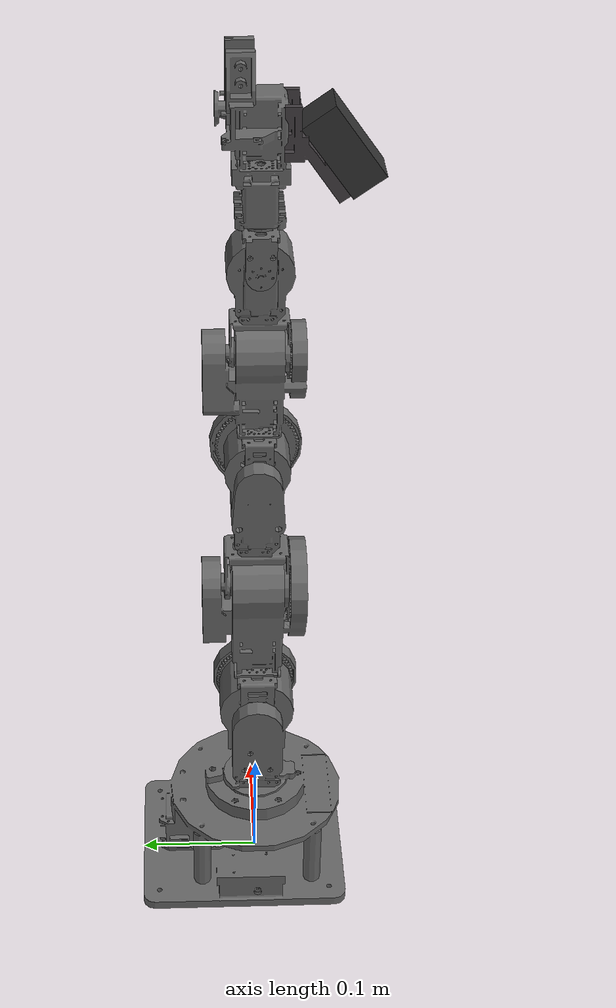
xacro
<?xml version="1.0"?>
<robot xmlns:xacro="http://www.ros.org/wiki/xacro" name="cyton_gamma_1500">
  <xacro:include filename="$(find cyton_gamma_1500_description)/urdf/cyton_gamma_1500_macros.urdf.xacro" />

  <xacro:base_footprint prefix="" />
  <xacro:cyton_gamma_1500 prefix="" virtual_ee="true" />
</robot>

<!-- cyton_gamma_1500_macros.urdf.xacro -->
<robot xmlns:xacro="http://www.ros.org/wiki/xacro" name="cyton_gamma_1500">

  <xacro:macro name="base_footprint" params="prefix">
    <link name="base_footprint">
      <visual>
        <origin xyz="0 0 0" rpy="0 0 0"/>
        <geometry>
          <sphere radius="0.001" />
        </geometry>
        <material name="white">
          <color rgba="1 1 1 1"/>
        </material>
      </visual>
    </link>

    <joint name="base_joint" type="fixed">
      <parent link="base_footprint" />
      <child link="${prefix}base_link" />
      <origin xyz="0.0 0.0 0.0" rpy="0 0 0" />
    </joint>
  </xacro:macro>

  <xacro:macro name="cyton_gamma_1500" params="prefix virtual_ee">
    <link name="${prefix}base_link">
      <visual>
        <origin xyz="0 0 0" rpy="0 0 0"/>
        <geometry>
          <mesh filename="package://cyton_gamma_1500_description/meshes/base.dae"/>
        </geometry>
      </visual>

	  <inertial>
		  <origin rpy="0 0 0" xyz="0.0 0 0"/>
		  <mass value="0.478571"/>
		  <!-- inretia tensor for solid cuboid: m=0.478571, w=0.177, h=0.074, d=0.150 -->
		  <inertia ixx="1.47e-03" ixy="0" ixz="0" iyy="2.15e-03" iyz="0" izz="1.12e-03"/>
	  </inertial>
      <collision>
        <!--origin xyz="0 0.0115 0.047"/-->
		<origin xyz="0 0 0" rpy="0 0 0"/>
        <geometry>
		  <!--box size="0.154 0.177 0.094"/-->
          <box size="0.154 0.16 0.075"/>
        </geometry>
      </collision>
    </link>

    <joint name="${prefix}shoulder_roll_joint" type="revolute">
      <parent link="${prefix}base_link" />
      <child link="${prefix}shoulder_roll" />
      <origin xyz="0 0 0.05315" rpy="0 0 0" />
      <limit lower="-2.618" upper="2.618" effort="100.0" velocity="1.0" />
      <axis xyz="0 0 1" />
    </joint>

    <link name="${prefix}shoulder_roll">
      <visual>
        <origin xyz="0 0 0" rpy="1.5708 0 0.384"/>
        <geometry>
          <mesh filename="package://cyton_gamma_1500_description/meshes/shoulder_roll.dae"/>
        </geometry>
      </visual>
      <collision>
        <origin xyz="0.0 0.0 0.0"/>
        <geometry>
          <!--box size="0.09829 0.18143 0.08392"/-->
		  <box size="0.068 0.10 0.065"/>
        </geometry>
      </collision>
	  <inertial>
		  <origin rpy="0 0 0" xyz="0 0 0.12"/>
		  <mass value="0.468571"/>
		  <!-- inretia tensor for solid cylinder: m=0.468571, h=0.09248, r=0.044737 -->
		  <inertia ixx="4.7e-04" ixy="0" ixz="0" iyy="5.7e-04" iyz="0" izz="5.7e-04"/>
       </inertial>

    </link>

    <joint name="${prefix}shoulder_pitch_joint" type="revolute">
      <parent link="${prefix}shoulder_roll" />
      <child link="${prefix}shoulder_pitch" />
      <origin xyz="0.0205 0 0.12435" rpy="0 0 0" />
      <limit lower="-1.8326" upper="1.8326" effort="100.0" velocity="1.0" />
      <axis xyz="1 0 0" />
    </joint>

	<transmission name="${prefix}tran1">
    <type>transmission_interface/SimpleTransmission</type>
    <joint name="${prefix}shoulder_roll_joint">
      <hardwareInterface>hardware_interface/PositionJointInterface</hardwareInterface>
    </joint>
    <actuator name="${prefix}motor1">
      <hardwareInterface>hardware_interface/PositionJointInterface</hardwareInterface>
    </actuator>
  </transmission>

    <link name="${prefix}shoulder_pitch">
      <visual>
        <origin xyz="0 0 0" rpy="1.5708 0 0" />
        <geometry>
          <mesh filename="package://cyton_gamma_1500_description/meshes/shoulder_pitch.dae"/>
        </geometry>
      </visual>
      <collision>
      <origin xyz="-0.02 0.0 0.0"/>
      <geometry>
	<sphere radius="0.055"/>
        <!--box size="0.098 0.08 0.11"/-->
      </geometry>
    </collision>
    <inertial>
      <!--origin rpy="0 0 0" xyz="-0.0214 0 0.117"/-->
	  <origin rpy="0 0 0" xyz="0 0 0"/>
      <mass value="0.4285714"/>
      <!-- inretia tensor for solid cylinder: m=0.4285714, h=0.09248, r=0.04204 -->
      <inertia ixx="4.9e-04" ixy="0" ixz="0" iyy="3.8e-04" iyz="0" izz="4.9e-04"/>
    </inertial>
    </link>

    <joint name="${prefix}shoulder_yaw_joint" type="revolute">
      <parent link="${prefix}shoulder_pitch" />
      <child link="${prefix}shoulder_yaw" />
      <origin xyz="-0.0215 -0.0205 0.1255" rpy="0 0 0" />
      <limit lower="-1.8326" upper="1.8326" effort="100.0" velocity="1.0" />
      <axis xyz="0 -1 0" />
    </joint>

	<transmission name="${prefix}tran2">
      <type>transmission_interface/SimpleTransmission</type>
      <joint name="${prefix}shoulder_pitch_joint">
        <hardwareInterface>hardware_interface/PositionJointInterface</hardwareInterface>
      </joint>
      <actuator name="${prefix}motor2">
        <hardwareInterface>hardware_interface/PositionJointInterface</hardwareInterface>
      </actuator>
    </transmission>

    <link name="${prefix}shoulder_yaw">
      <visual>
        <origin xyz="0 0 0.0" rpy="1.5708 0 -1.5708" />
        <geometry>
          <mesh filename="package://cyton_gamma_1500_description/meshes/shoulder_yaw.dae"/>
        </geometry>
      </visual>
      <collision>
		<origin xyz=" -0.002 0.02 -0.01"/>
		<geometry>
			<sphere radius="0.055"/>
			<!--box size="0.08 0.1 0.11"/-->
		</geometry>
	  </collision>
      <inertial>
		  <!--origin rpy="0 0 0" xyz="-0.002 0.021 0.1135"/-->
		  <origin rpy="0 0 0" xyz="0 0 0"/>
		  <mass value="0.408571"/>
		  <!-- inretia tensor for solid cylinder: m=0.408571, h=0.084081, r=0.036785 -->
		  <inertia ixx="2.8e-04" ixy="0" ixz="0" iyy="3.8e-04" iyz="0" izz="3.8e-04"/>
       </inertial>
    </link>

	<transmission name="${prefix}tran3">
    <type>transmission_interface/SimpleTransmission</type>
    <joint name="${prefix}shoulder_yaw_joint">
      <hardwareInterface>hardware_interface/PositionJointInterface</hardwareInterface>
    </joint>
    <actuator name="${prefix}motor3">
      <hardwareInterface>hardware_interface/PositionJointInterface</hardwareInterface>
    </actuator>
  </transmission>

    <joint name="${prefix}elbow_pitch_joint" type="revolute">
      <parent link="${prefix}shoulder_yaw" />
      <child link="${prefix}elbow_pitch" />
      <origin xyz="0.018 0.0206 0.1158" rpy="0 0 0" />
      <limit lower="-1.8326" upper="1.8326" effort="100.0" velocity="1.0" />
      <axis xyz="1 0 0" />
    </joint>

    <link name="${prefix}elbow_pitch">
      <visual>
        <origin xyz="0 0 0" rpy="1.5708 0 3.1416" />
        <geometry>
          <mesh filename="package://cyton_gamma_1500_description/meshes/elbow_pitch.dae"/>
        </geometry>
      </visual>
      <collision>
      <origin xyz="-0.022 0.0 -0.006"/>
      <geometry>
		<sphere radius="0.055"/>
        <!--box size="0.09 0.1 0.11"/-->
      </geometry>
      </collision>
      <inertial>
		  <origin rpy="0 0 0" xyz="0 0 0"/>
		  <!--origin rpy="0 0 0" xyz="-0.0176 0.001 0.095"/-->
		  <mass value="0.388671"/>
		  <!-- inretia tensor for solid cylinder: m=0.388671, h=0.06705, r=0.028975 -->
		  <inertia ixx="2.3e-04" ixy="0" ixz="0" iyy="1.6e-04" iyz="0" izz="2.3e-04"/>
       </inertial>
    </link>

	<transmission name="${prefix}tran4">
		<type>transmission_interface/SimpleTransmission</type>
		<joint name="${prefix}elbow_pitch_joint">
			<hardwareInterface>hardware_interface/PositionJointInterface</hardwareInterface>
		</joint>
		<actuator name="${prefix}motor4">
			<hardwareInterface>hardware_interface/PositionJointInterface</hardwareInterface>
		</actuator>
	</transmission>

    <joint name="${prefix}elbow_yaw_joint" type="revolute">
      <parent link="${prefix}elbow_pitch" />
      <child link="${prefix}elbow_yaw" />
      <origin xyz="-0.0171 -0.018 0.09746" rpy="0 0 0" />
      <limit lower="-1.8326" upper="1.8326" effort="100.0" velocity="1.0" />
      <axis xyz="0 -1 0" />
    </joint>

    <link name="${prefix}elbow_yaw">
      <visual>
        <origin xyz="0 0 0" rpy="1.5708 0 1.5708" />
        <geometry>
          <mesh filename="package://cyton_gamma_1500_description/meshes/elbow_yaw.dae"/>
        </geometry>
      </visual>
      <collision>
		<origin xyz="0.0 0.025 0.0"/>
		<geometry>
			<sphere radius="0.05"/>
		</geometry>
		</collision>
		<inertial>
		  <!--origin rpy="0 0 0" xyz="0 0.018 0.073"/-->
		  <origin rpy="0 0 0" xyz="0 0 0"/>
		  <mass value="0.368871"/>
		  <!-- inretia tensor for solid cylinder: m=0.368871, h=0.043602, r=0.024071 -->
		  <inertia ixx="1.0686e-04" ixy="0" ixz="0" iyy="1.1187e-04" iyz="0" izz="1.1187e-04"/>
		</inertial>
    </link>

	<transmission name="${prefix}tran5">
    <type>transmission_interface/SimpleTransmission</type>
    <joint name="${prefix}elbow_yaw_joint">
      <hardwareInterface>hardware_interface/PositionJointInterface</hardwareInterface>
    </joint>
    <actuator name="${prefix}motor5">
      <hardwareInterface>hardware_interface/PositionJointInterface</hardwareInterface>
    </actuator>
  </transmission>

    <joint name="${prefix}wrist_pitch_joint" type="revolute">
      <parent link="${prefix}elbow_yaw" />
      <child link="${prefix}wrist_pitch" />
      <origin xyz="0.02626 0.018 0.0718" rpy="0 0 0" />
      <limit lower="-1.8326" upper="1.8326" effort="100.0" velocity="1.0" />
      <axis xyz="-1 0 0" />
    </joint>

    <link name="${prefix}wrist_pitch">
      <visual>
        <origin xyz="0 0 0" rpy="1.5708 0 1.5708" />
        <geometry>
          <mesh filename="package://cyton_gamma_1500_description/meshes/wrist_pitch.dae"/>
        </geometry>
      </visual>
      <collision>
		<origin xyz="-0.02 0.0 0.0"/>
		<geometry>
			<box size="0.07 0.06 0.11"/>
		</geometry>
		</collision>
		<inertial>
		  <!--origin rpy="0 0 0" xyz="-0.027 -0.0005 0.028"/-->
		  <origin rpy="0 0 0" xyz="0 0 0"/>
	  <mass value="0.2"/>
		<!-- inretia tensor for solid cuboid: m=0.008, h=0.045602, w=0.0218, d=0.005 -->
		<inertia ixx="8.337e-06" ixy="0" ixz="0" iyy="3.507e-05" iyz="0" izz="4.258e-05"/>
		</inertial>
    </link>
	<transmission name="${prefix}tran6">
		<type>transmission_interface/SimpleTransmission</type>
		<joint name="${prefix}wrist_pitch_joint">
			<hardwareInterface>hardware_interface/PositionJointInterface</hardwareInterface>
		</joint>
		<actuator name="${prefix}motor6">
			<hardwareInterface>hardware_interface/PositionJointInterface</hardwareInterface>
		</actuator>
    </transmission>

    <joint name="${prefix}wrist_roll_joint" type="revolute">
      <parent link="${prefix}wrist_pitch" />
      <child link="${prefix}wrist_roll" />
      <origin xyz="-0.026255 0 0.051425" rpy="0 0 0" />
      <limit lower="-2.61799" upper="2.61799" effort="100.0" velocity="1.0" />
      <axis xyz="0 0 1" />
    </joint>

    <link name="${prefix}wrist_roll">
      <visual>
        <origin xyz="0 0 0" rpy="3.1416 0 -1.5708" />
        <geometry>
          <mesh filename="package://cyton_gamma_1500_description/meshes/wrist_roll.dae"/>
        </geometry>
      </visual>
      <collision>
		<origin xyz="0.0 0.008 0.04"/>
		<geometry>
			<box size="0.08 0.06 0.08"/>
		</geometry>
	  </collision>
	  <inertial>
		  <!--origin rpy="0 0 0" xyz="0 0 0.029"/-->
		  <origin rpy="0 0 0" xyz="0 0 0"/>
		  <mass value="0.38"/>
		  <!-- inretia tensor for solid cylinder: m=0.38, h=0.095, r=0.027975 -->
		  <inertia ixx="3.6e-04" ixy="0" ixz="0" iyy="3.6e-04" iyz="0" izz="1.487e-04"/>
	  </inertial>
    </link>

	<transmission name="${prefix}tran7">
		<type>transmission_interface/SimpleTransmission</type>
		<joint name="${prefix}wrist_roll_joint">
			<hardwareInterface>hardware_interface/PositionJointInterface</hardwareInterface>
		</joint>
		<actuator name="${prefix}motor7">
			<hardwareInterface>hardware_interface/PositionJointInterface</hardwareInterface>
		</actuator>
	</transmission>

    <joint name="${prefix}gripper_joint" type="prismatic">
      <parent link="${prefix}wrist_roll" />
      <child link="${prefix}gripper_finger1" />
      <origin xyz="-0.01331 0.00485 0.077225" rpy="0 0 0" />
      <limit lower="-0.008" upper="0.008" effort="100.0" velocity="1.0" />
      <axis xyz="1 0 0" />
    </joint>

    <link name="${prefix}gripper_finger1">
      <visual>
        <origin xyz="0 0 0" rpy="0 0 0" />
        <geometry>
          <mesh filename="package://cyton_gamma_1500_description/meshes/gripper_finger1.dae"/>
        </geometry>
      </visual>
      <collision>
        <!--origin xyz="-0.0167 0.0172 0.7254"/-->
		<origin xyz="0.0 0.007 0.02"/>
        <geometry>
			<box size="0.010 0.02 0.031"/>
        </geometry>
      </collision>
	  <inertial>
      <!--origin rpy="0 0 0" xyz="0.0034 0.0096 0.017"/-->
		<origin rpy="0 0 0" xyz="0 0 0"/>
		<mass value="0.035"/>
		<!-- inretia tensor for solid cuboid: m=0.035, h=0.0323, w=0.01469, d=0.0224 -->
		<inertia ixx="4.5064e-06" ixy="0" ixz="0" iyy="3.6723e-06" iyz="0" izz="2.0929e-06"/>
		</inertial>
    </link>

	<transmission name="${prefix}tran8">
		<type>transmission_interface/SimpleTransmission</type>
		<joint name="${prefix}gripper_joint">
			<hardwareInterface>hardware_interface/PositionJointInterface</hardwareInterface>
		</joint>
		<actuator name="${prefix}motor8">
			<hardwareInterface>hardware_interface/PositionJointInterface</hardwareInterface>
		</actuator>
	</transmission>

    <joint name="${prefix}gripper_joint2" type="prismatic">
      <parent link="${prefix}wrist_roll" />
      <child link="${prefix}gripper_finger2" />
      <origin xyz="0.0098 0.00485 0.077225" rpy="0 0 0" />
      <limit lower="-0.008" upper="0.008" effort="100.0" velocity="1.0" />
      <mimic joint="${prefix}gripper_joint" multiplier="-1"/>
      <axis xyz="1 0 0" />
    </joint>

    <link name="${prefix}gripper_finger2">
      <visual>
        <origin xyz="0 0 0" rpy="0 0 0" />
        <geometry>
          <mesh filename="package://cyton_gamma_1500_description/meshes/gripper_finger2.dae"/>
        </geometry>
      </visual>
     <collision>
		<!--origin xyz="0.0132 0.0172 0.7254"/-->
		<origin xyz="0.0 0.007 0.02"/>
		<geometry>
			<box size="0.010 0.020 0.031"/>
		</geometry>
		</collision>
	  <inertial>
		<!--origin rpy="0 0 0" xyz="0.0034 0.0096 0.017"/-->
		<origin rpy="0 0 0" xyz="0 0 0"/>
		<mass value="0.035"/>
		<!-- inretia tensor for solid cuboid: m=0.035, h=0.0323, w=0.01469, d=0.0224 -->
		<inertia ixx="4.5064e-06" ixy="0" ixz="0" iyy="3.6723e-06" iyz="0" izz="2.0929e-06"/>
		</inertial>
    </link>

    <xacro:if value="${virtual_ee}"> <!-- virtual end-effector -->
      <joint name="${prefix}virtual_endeffector_joint" type="fixed">
        <parent link="${prefix}wrist_roll" />
        <child link="${prefix}virtual_endeffector" />
        <origin xyz="-0.002316 0.0079 0.079425" rpy="0 0 0" />
      </joint>

      <link name="${prefix}virtual_endeffector">
        <visual>
          <origin xyz="0 0 0" rpy="0 0 0" />
          <geometry>
            <sphere radius="0.002" />
          </geometry>
          <material name="grey">
            <color rgba="0.7 0.7 0.7 0.8" />
          </material>
        </visual>
		<inertial>
			<origin rpy="0 0 0" xyz="0 0 0"/>
			<mass value="0.0016"/>
			<!-- inretia tensor for solid sphere: m=0.0016, r=0.0022 -->
			<inertia ixx="3.0976e-09" ixy="0" ixz="0" iyy="3.0976e-09" iyz="0" izz="3.0976e-09"/>
		</inertial>
      </link>
    </xacro:if>
	<joint name="${prefix}camera_bracket_joint" type="fixed">
      <parent link="${prefix}wrist_roll" />
      <child link="${prefix}camera_bracket" />
      <origin xyz="-0.0008 -0.028 0.0435" rpy="0 0 0" />
    </joint>

    <link name="${prefix}camera_bracket">
      <visual>
        <origin xyz="0 0 0" rpy="0 0 0" />
        <geometry>
          <mesh filename="package://cyton_gamma_1500_minicam_description/meshes/cam_bracket.dae"/>
        </geometry>
      </visual>
      <collision>
        <origin xyz="0.0 0.0 0.0"/>
        <geometry>
          <box size="0.03512 0.04821 0.07179"/>
        </geometry>
      </collision>
	  <inertial>
		<origin rpy="0.95 0 0" xyz="0 -0.01 -0.012"/>
		<mass value="0.052"/>
		<!-- inretia tensor for solid cuboid: m=0.052, h=0.071, w=0.028, d=0.0086 -->
		<inertia ixx="2.2165e-05" ixy="0" ixz="0" iyy="3.7178e-06" iyz="0" izz="2.5242e-05"/>
    </inertial>
    </link>

    <joint name="${prefix}camera_joint" type="fixed">
      <parent link="${prefix}camera_bracket" />
      <child link="${prefix}camera" />
      <origin xyz="0.0 -0.028 -0.005" rpy="-0.625 0 0" />
    </joint>

    <link name="${prefix}camera">
      <visual>
        <origin xyz="0 0 0" rpy="0 0 0" />
        <geometry>
          <box size="0.031 0.028 0.063" />
        </geometry>
        <material name="blackish">
          <color rgba="0.2 0.2 0.2 1" />
        </material>
      </visual>
      <collision>
        <origin xyz="0 0 0" rpy="0 0 0" />
        <geometry>
          <box size="0.036 0.045 0.063" />
        </geometry>
      </collision>
	  <inertial>
		<origin rpy="0 0 0" xyz="0 0 0"/>
		<mass value="0.085"/>
		<!-- inretia tensor for solid cuboid: m=0.085, h=0.065, w=0.024, d=0.024 -->
		<inertia ixx="3.4007e-05" ixy="0" ixz="0" iyy="3.4007e-05" iyz="0" izz="8.16e-06"/>
    </inertial>

    </link>

  </xacro:macro>

</robot>
